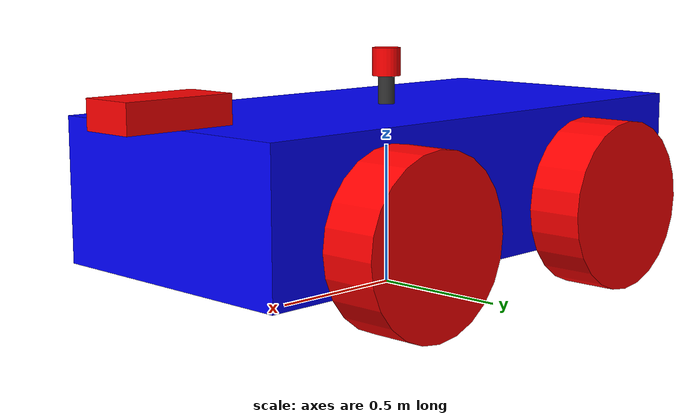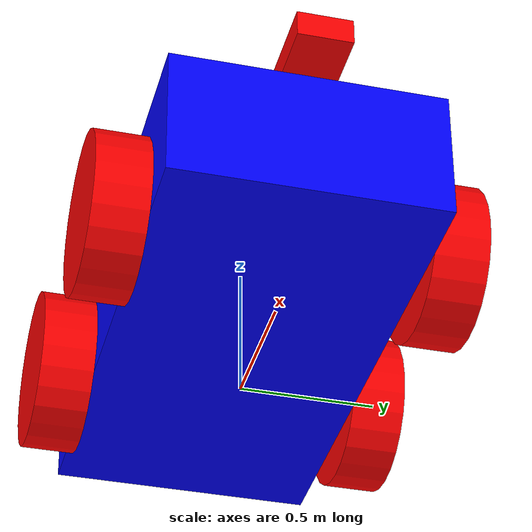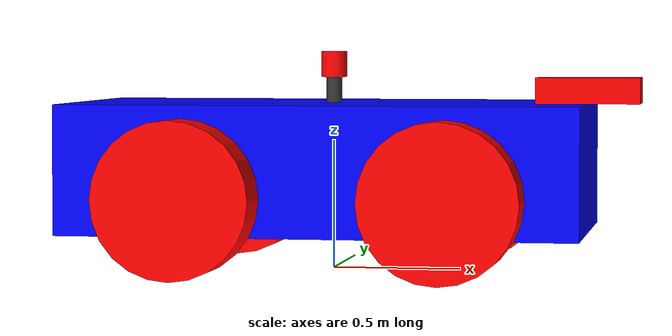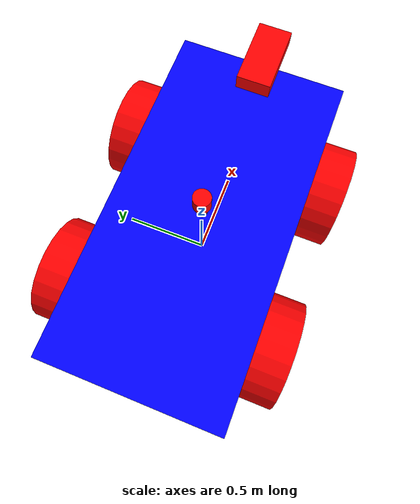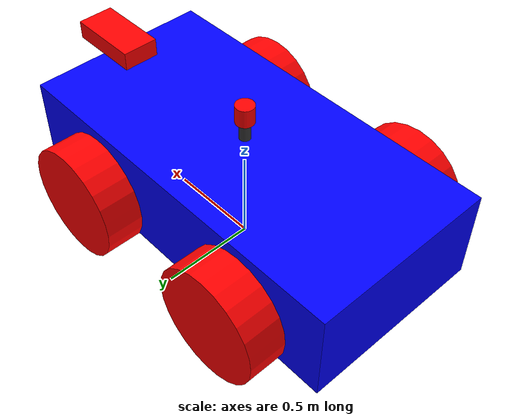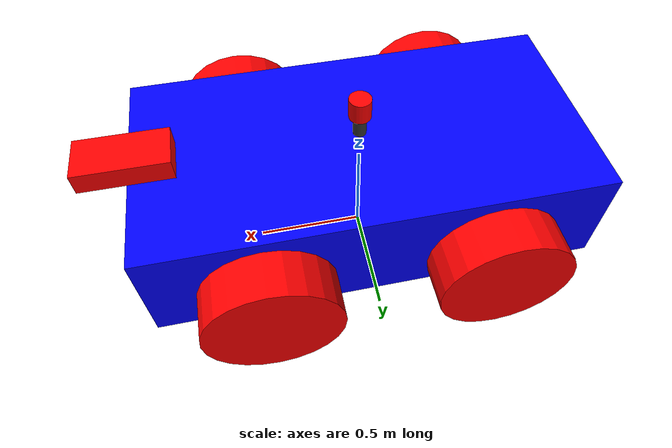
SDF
<?xml version="1.0"?>
<sdf version="1.9">
    <model name='car' canonical_link='chassis::chassis_link'>
        <include>
            <uri>model://chassis</uri>
            <name>chassis</name>
            <pose>0 0 0.4 0 0 0</pose>
        </include>
        <pose>0 0 0 0 0 0</pose>

        <frame name="lidar_frame" attached_to='chassis::chassis_link'>
            <pose>1.05 0 0.5 0 0 0</pose>
        </frame>

        <include>
            <uri>model://tire</uri>
            <name>left_front_wheel</name>
            <pose>0.5 0.6 0.3 -1.5707 0 0</pose>
        </include>
        <include>
            <uri>model://tire</uri>
            <name>right_front_wheel</name>
            <pose>0.5 -0.6 0.3 -1.5707 0 0</pose>
        </include>
        <include>
            <uri>model://tire</uri>
            <name>left_rear_wheel</name>
            <pose>-0.5 0.6 0.3 -1.5707 0 0</pose>
        </include>
        <include>
            <uri>model://tire</uri>
            <name>right_rear_wheel</name>
            <pose>-0.5 -0.6 0.3 -1.5707 0 0</pose>
        </include>

        <include>
            <uri>model://knuckle</uri>
            <name>left_steering_knuckle</name>
            <pose>0.5 0.6 0.3 0 0 0</pose>
        </include>

        <joint name='left_steering_joint' type='revolute'>
            <parent>chassis::chassis_link</parent>
            <child>left_steering_knuckle::knuckle_link</child>
            <axis>
                <xyz>0 0 1</xyz>
                <limit>
                    <lower>-0.6</lower>
                    <upper>0.6</upper>
                    <effort>1000000</effort>
                </limit>
            </axis>
        </joint>

        <joint name='left_front_wheel_joint' type='revolute'>
            <pose relative_to='left_front_wheel' />
            <parent>left_steering_knuckle::knuckle_link</parent>
            <child>left_front_wheel::tire_link</child>
            <axis>
                <xyz expressed_in='__model__'>0 1 0</xyz>
                <limit>
                    <lower>-1.79769e+308</lower>
                    <upper>1.79769e+308</upper>
                </limit>
            </axis>
        </joint>

        <include>
            <uri>model://knuckle</uri>
            <name>right_steering_knuckle</name>
            <pose>0.5 -0.6 0.3 0 0 0</pose>
        </include>

        <joint name='right_steering_joint' type='revolute'>
            <parent>chassis::chassis_link</parent>
            <child>right_steering_knuckle::knuckle_link</child>
            <axis>
                <xyz>0 0 1</xyz>
                <limit>
                    <lower>-0.6</lower>
                    <upper>0.6</upper>
                    <effort>1000000</effort>
                </limit>
            </axis>
        </joint>

        <joint name='right_front_wheel_joint' type='revolute'>
            <pose relative_to='right_front_wheel' />
            <parent>right_steering_knuckle::knuckle_link</parent>
            <child>right_front_wheel::tire_link</child>
            <axis>
                <xyz expressed_in='__model__'>0 1 0</xyz>
                <limit>
                    <lower>-1.79769e+308</lower>
                    <upper>1.79769e+308</upper>
                </limit>
            </axis>
        </joint>

        <joint name='left_rear_wheel_joint' type='revolute'>
            <pose relative_to='left_rear_wheel' />
            <parent>chassis::chassis_link</parent>
            <child>left_rear_wheel::tire_link</child>
            <axis>
                <xyz expressed_in='__model__'>0 1 0</xyz>
                <limit>
                    <lower>-1.79769e+308</lower>
                    <upper>1.79769e+308</upper>
                </limit>
            </axis>
        </joint>

        <joint name='right_rear_wheel_joint' type='revolute'>
            <pose relative_to='right_rear_wheel' />
            <parent>chassis::chassis_link</parent>
            <child>right_rear_wheel::tire_link</child>
            <axis>
                <xyz expressed_in='__model__'>0 1 0</xyz>
                <limit>
                    <lower>-1.79769e+308</lower>
                    <upper>1.79769e+308</upper>
                </limit>
            </axis>
        </joint>
        <!--공식적으로 제공되는 플러그인을 찾아서 구현하였음-->
        <plugin
            filename="ignition-gazebo-ackermann-steering-system"
            name="ignition::gazebo::v6::systems::AckermannSteering">
            <topic>/cmd_vel</topic>
            <left_steering_joint>left_steering_joint</left_steering_joint>
            <right_steering_joint>right_steering_joint</right_steering_joint>
            <left_joint>left_rear_wheel_joint</left_joint>
            <right_joint>right_rear_wheel_joint</right_joint>
            <wheel_base>1.0</wheel_base>
            <wheel_separation>1.2</wheel_separation>
            <wheel_radius>0.3</wheel_radius>
            <odom_topic>/model/car/odometry</odom_topic>
            <tf_topic>/model/car/tf</tf_topic>
            <frame_id>odom</frame_id>
            <child_frame_id>chassis::chassis_link</child_frame_id>
            <odom_publish_frequency>30</odom_publish_frequency>
        </plugin>
        <!--충돌 방지를 위해서 contact sensor를 추가하였음.-->
        <plugin filename="libignition-gazebo-contact-system.so"
                name="ignition::gazebo::systems::Contact">
        </plugin>
        <!--자동차를 키보드로 움직여보기 위한 코드. 튜토리얼 중 추가하였음.-->
        <plugin filename="ignition-gazebo-triggered-publisher-system"
            name="ignition::gazebo::v6::systems::TriggeredPublisher">
            <input type="ignition.msgs.Int32" topic="/keyboard/keypress">
                <match field="data">16777235</match>
            </input>
            <output type="ignition.msgs.Twist" topic="/cmd_vel">
                linear: {x: 0.5}, angular: {z: 0.0}
            </output>
        </plugin>

        <plugin filename="ignition-gazebo-triggered-publisher-system"
            name="ignition::gazebo::v6::systems::TriggeredPublisher">
            <input type="ignition.msgs.Int32" topic="/keyboard/keypress">
                <match field="data">16777237</match>
            </input>
            <output type="ignition.msgs.Twist" topic="/cmd_vel">
                linear: {x: -0.5}, angular: {z: 0.0}
            </output>
        </plugin>

        <plugin filename="ignition-gazebo-triggered-publisher-system"
            name="ignition::gazebo::v6::systems::TriggeredPublisher">
            <input type="ignition.msgs.Int32" topic="/keyboard/keypress">
                <match field="data">16777234</match>
            </input>
            <output type="ignition.msgs.Twist" topic="/cmd_vel">
                linear: {x: 0.2}, angular: {z: 0.5}
            </output>
        </plugin>

        <plugin filename="ignition-gazebo-triggered-publisher-system"
            name="ignition::gazebo::v6::systems::TriggeredPublisher">
            <input type="ignition.msgs.Int32" topic="/keyboard/keypress">
                <match field="data">16777236</match>
            </input>
            <output type="ignition.msgs.Twist" topic="/cmd_vel">
                linear: {x: 0.2}, angular: {z: -0.5}
            </output>
        </plugin>
        <!--ROS한테 내부 센서들이 자동차의 어디에 있는 지 알려주는 플러그인이라고 함. 이게 있어야 ROS에서 점을 찍을 수 있다고함.-->
        <plugin
            filename="ignition-gazebo-pose-publisher-system"
            name="ignition::gazebo::v6::systems::PosePublisher">
            <publish_link_pose>true</publish_link_pose>
            <publish_sensor_pose>true</publish_sensor_pose>
            <publish_collision_pose>false</publish_collision_pose>
            <publish_visual_pose>false</publish_visual_pose>
            <publish_nested_models>true</publish_nested_models>
            <publish_model_pose>true</publish_model_pose>
            <use_pose_vector_msg>true</use_pose_vector_msg>
            <static_publisher>true</static_publisher>
            <static_update_frequency>10</static_update_frequency>
        </plugin>
    </model>
</sdf>

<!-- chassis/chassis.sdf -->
<sdf version="1.9" xmlns:ignition="http://sdformat.org/schemas/ignition">
    <model name='chassis_model'>
        <link name='chassis_link'>

            <!-- 차체에 실질적인 IMU 센서 부착-->
            <sensor name="imu_sensor" type="imu">
                <always_on>1</always_on>
                <update_rate>1</update_rate>
                <visualize>true</visualize>
                <topic>imu</topic>
            </sensor>
            <!-- 차체에 실질적인 LIDAR 센서 부착-->
            <!-- mac m2 환경에서 호환성 문제 지속 발생-->
            <!-- lidar_frame의 위치 (car.sdf에서 1.05 0 0.5로 정의됨)를 chassis_link 기준으로 직접 설정 -->

            <!-- 라이다 센서와 차체 사이의 빈공간을 메꾸기 위한 링크 추가-->
            <visual name='lidar_empty_space_visual'>
                <pose>0 0 0.3 0 0 0</pose> <!--빈 공간의 좌표-->
                <geometry>
                    <cylinder> <!--같은 원통 모양으로 하되, 센서보다 반지름 조금 작게-->
                        <radius>0.03</radius>
                        <length>0.1</length>
                    </cylinder>
                </geometry>
                <material>
                    <ambient>0.2 0.2 0.2 1</ambient>
                    <diffuse>0.2 0.2 0.2 1</diffuse>
                </material>
            </visual>

            <collision name='lidar_empty_space_collision'>
                <pose>0 0 0.3 0 0 0</pose> <!--빈 공간의 좌표, 위와 동일-->
                <geometry>
                    <cylinder>
                        <radius>0.03</radius>
                        <length>0.1</length>
                    </cylinder>
                </geometry>
            </collision>

            <!-- 라이다 센서 위치를 시각적으로 표시하기 위한 visual 추가 -->
            <visual name='lidar_visual'>
                <pose>0 0 0.4 0 0 0</pose>
                <geometry>
                    <cylinder>
                        <radius>0.05</radius>
                        <length>0.1</length>
                    </cylinder>
                </geometry>
                <material>
                    <ambient>1.0 0.0 0.0 1</ambient>
                    <diffuse>1.0 0.0 0.0 1</diffuse>
                    <specular>1.0 0.0 0.0 1</specular>
                </material>
            </visual>
            <!--현실 세계를 생각하면 라이다 센서를 360도 돌릴려면 안에 있는 모터가 360도 돌아가면서 센서를 쏘는거라서 각 방향별로 시간차가 발생한다고함.-->
            <!--단순히 라이다 센서 태그 하나 넣고 각도를 360도 돌아라고 하면 현실 세계랑 조금 안맞는 것 같은 느낌이 있어서 상하좌우 각 방면에 카메라를 하나씩 두는 것도 고민을 했었는데 -->
            <!--일단은 완벽한 현실 재현보다는 시뮬레이션 환경에서 잘 돌아가는 강화학습 에이전트를 만드는게 우선이라고 생각해서 이렇게 진행했음.-->
            <!--update_rate를 5로 지정해둬서 0.2초에 한번씩 시뮬레이션 세상에서 멈추고 뽑아주는 거라는데 일단은 넘어감-->
            <sensor name='gpu_lidar' type='gpu_lidar'>
                <pose>0 0 0.4 0 0 0</pose>
                <topic>lidar</topic>
                <update_rate>5</update_rate>
                <ignition:frame_id>lidar_frame</ignition:frame_id> <!--ROS에서 쓰기 편하게 짧은 이름으로 해주는 것이라고 함-->
                <ray>
                    <scan>
                        <horizontal>
                            <samples>360</samples>
                            <resolution>1</resolution>
                            <min_angle>-3.141592</min_angle>
                            <max_angle>3.141592</max_angle>
                        </horizontal>
                        <!-- 수직 방향으로도 스캔이 가능하지만 이번 과제에서는 거리를 측정해서 센서값 기반으로 장애물을 회피하는거지, 드론처럼 z축 이동하는 것이 아니기 때문에 최소화로 작성하고 사용은 안 할 것임.-->
                        <vertical>
                            <samples>1</samples>
                            <resolution>0.01</resolution>
                            <min_angle>0</min_angle>
                            <max_angle>0</max_angle>
                        </vertical>
                    </scan>
                    <range>
                        <min>0.08</min>
                        <max>10.0</max>
                        <resolution>0.01</resolution>
                    </range>
                </ray>
                <always_on>1</always_on>
                <visualize>true</visualize>
            </sensor>
            <!--SSH 터널링으로 넘어오기에 데이터가 크다는 오류가 계속 나와서 320*240을 160*120으로 줄이고 주기도 30->10으로 낮춤-->
            <!--카메라의 x좌표는 처음에 복잡하게 생각하기 싫어서 차체의 끝 좌표에 설치했는데 돌출형인게 카메라가 정면을 주시할 때 더 나은거 같아서 그대로 둠.-->
            <sensor name="camera" type="camera">
                <pose>1 0 0.3 0 0 0</pose>
                <camera>
                    <horizontal_fov>1.047</horizontal_fov>
                    <image>
                        <width>160</width>
                        <height>120</height>
                    </image>
                    <clip>
                        <near>0.1</near>
                        <far>100</far>
                    </clip>
                </camera>
                <always_on>1</always_on>
                <update_rate>10</update_rate>
                <visualize>true</visualize>
                <topic>camera</topic>
            </sensor>

            <visual name='rgb_camera'>
                <pose>1 0 0.3 0 0 0</pose>
                <geometry>
                    <box>
                        <size>0.4 0.2 0.1</size>
                    </box>
                </geometry>
                <material>
                    <ambient>1.0 0.0 0.0 1</ambient>
                    <diffuse>1.0 0.0 0.0 1</diffuse>
                    <specular>1.0 0.0 0.0 1</specular>
                </material>
            </visual>
            <pose>0 0 0 0 0 0</pose>
            <!-- 공식 문서에 따르면 관성이라고 함.-->
            <inertial> <!--inertial
                properties of the link mass, inertia matix-->
                <mass>1.14395</mass>
                <inertia>
                    <ixx>0.095329</ixx>
                    <ixy>0</ixy>
                    <ixz>0</ixz>
                    <iyy>0.381317</iyy>
                    <iyz>0</iyz>
                    <izz>0.476646</izz>
                </inertia>
            </inertial>
            <visual name='visual'>
                <!-- 시각적으로 어떻게 보이는 지를 정의하는 부분 -->
                <geometry>
                    <!--직육면체라고함.-->
                    <box>
                        <size>2.0 1.0 0.5</size>
                    </box>
                </geometry>
                <!-- 정의한 link(여기서는 차체)의 색상을 정의하는 부분-->
                <material>
                    <ambient>0.0 0.0 1.0 1</ambient>
                    <diffuse>0.0 0.0 1.0 1</diffuse>
                    <specular>0.0 0.0 1.0 1</specular>
                </material>
            </visual>
            <!--충돌체를
            정의하는 부분. 시각적인것과 다르게 정의할 수도 있다고는 하는데. 나는 일단 똑같게.-->
            <collision name='chassis_collision'>
                <geometry>
                    <box>
                        <size>2.0 1.0 0.5</size>
                    </box>
                </geometry>
            </collision>
            <!-- 차체에 contact sensor를 부착-->
            <sensor name="contact_sensor_chassis" type="contact">
                <collision>chassis_collision</collision><!--어떤것이 부딪히는것을 감시할건지 대상을 정하는거라고함-->
                <always_on>1</always_on>
                <update_rate>30</update_rate><!--충돌은 중요한 거니까 자주 업데이트 되도록 빈도 설정. 1초에 30번 업데이트 된다.-->
                <topic>collision</topic><!--topic은 모든 컨택트 센서에 다 같은 값을 줘도 될 거 같다. 어차피 어디를 부딪히든 부딪힌거니까.-->
            </sensor>
        </link>
    </model>
</sdf>

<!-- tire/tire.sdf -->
<sdf version="1.9">
    <model name='tire_model'>
        <link name='tire_link'>
            <pose> 0 0 0 0 0 0</pose>
            <inertial><!--튜토리얼에서 그대로 가져올떄는 반지름 0.4 기준 관성이었기 때문에 수정함-->
                    <mass>1</mass>
                    <inertia>
                        <ixx>0.025833</ixx>
                        <ixy>0</ixy>
                        <ixz>0</ixz>
                        <iyy>0.025833</iyy>
                        <iyz>0</iyz>
                        <izz>0.045</izz>
                    </inertia>
            </inertial>

            <visual name='visual'>
                <geometry>
                    <cylinder> <!--라이다 센서에 걸려서 반지름 줄임. car.sdf파일에서 축도 변경해서 내릴 생각-->
                        <radius>0.3</radius>
                        <length>0.2</length>
                    </cylinder>
                </geometry>
                <material>
                    <ambient>1.0 0.0 0.0 1</ambient>
                    <diffuse>1.0 0.0 0.0 1</diffuse>
                    <specular>1.0 0.0 0.0 1</specular>
                </material>
            </visual>
            <collision name='tire_collision'>
                <geometry>
                    <cylinder>
                        <radius>0.3</radius>
                        <length>0.2</length>
                    </cylinder>
                </geometry>
            </collision>
            <!-- 타이어에도 contact sensor를 부착-->
            <!-- 한 파일에 넣으니까 다른 모든 타이어에 적용됨-->
            <sensor name="contact_sensor_tire" type="contact">
                <collision>tire_collision</collision><!--어떤것이 부딪히는것을 감시할건지 대상을 정하는거라고함-->
                <always_on>1</always_on>
                <update_rate>30</update_rate><!--충돌은 중요한 거니까 자주 업데이트 되도록 빈도 설정. 1초에 30번 업데이트 된다.-->
                <topic>collision</topic><!--topic은 모든 컨택트 센서에 다 같은 값을 줘도 될 거 같다. 어차피 어디를 부딪히든 부딪힌거니까.-->
                <!--topic의 응답으로 ground_plane이 오면 얘는 무시해야 한다. 지면에 닿은거는 충돌한게 아니니까-->
            </sensor>
        </link>
    </model>
</sdf>

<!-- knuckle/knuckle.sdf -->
<sdf version="1.9">
    <model name='knuckle_model'>
        <link name='knuckle_link'>
            <pose>0 0 0 0 0 0</pose>
            <inertial>
                <mass>0.1</mass>
                <inertia>
                    <ixx>0.001</ixx>
                    <ixy>0</ixy>
                    <ixz>0</ixz>
                    <iyy>0.001</iyy>
                    <iyz>0</iyz>
                    <izz>0.001</izz>
                </inertia>
            </inertial>
            <visual name='visual'>
                <geometry>
                    <box>
                        <size>0.1 0.1 0.1</size>
                    </box>
                </geometry>
            </visual>
        </link>
    </model>
</sdf>
